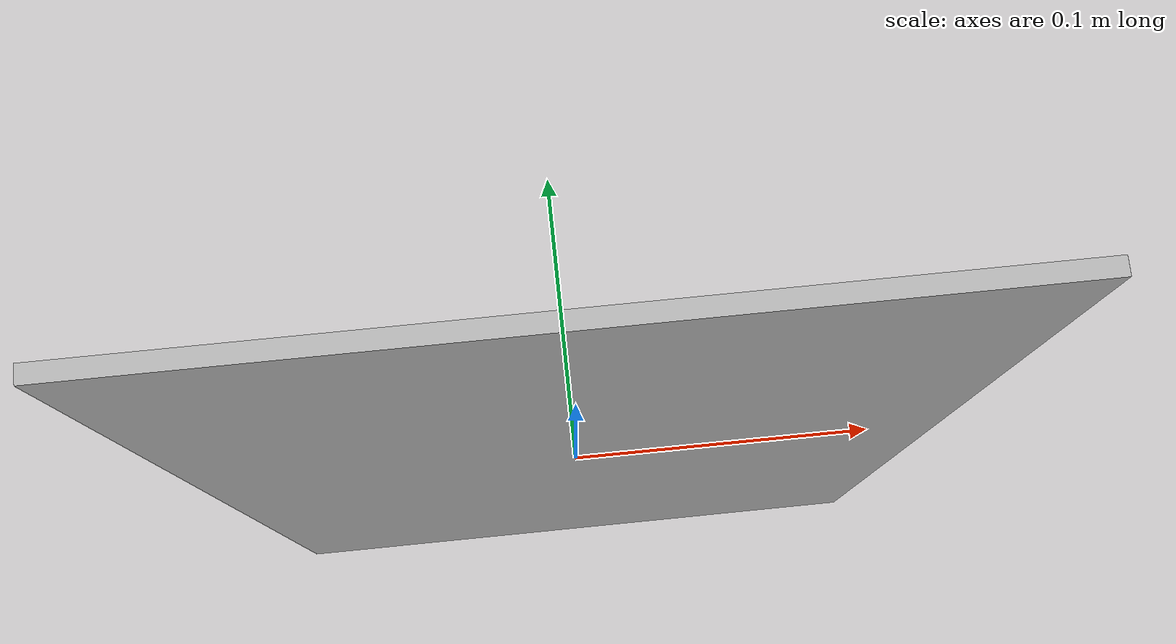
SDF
<?xml version="1.0" ?>
<sdf version="1.5">
  <model name="Cow2">
    <static>true</static>
    <link name="link">
      <pose>0 0 0 0 0 0</pose>
      <collision name="collision">
        <geometry>
          <box>
            <size>.242 0.005 .3984</size>
          </box>
        </geometry>
      </collision>
      <visual name="visual">
        <cast_shadows>false</cast_shadows>
        <geometry>
          <box>
            <size>.242 0.005 .3984</size>
          </box>
        </geometry>
        <material>
          <script>
            <uri>model://Cow2/materials/scripts</uri>
            <uri>model://Cow2/materials/textures</uri>
            <name>vrc/Cow2</name>
          </script>
        </material>
      </visual>
    </link>
  </model>
</sdf>
